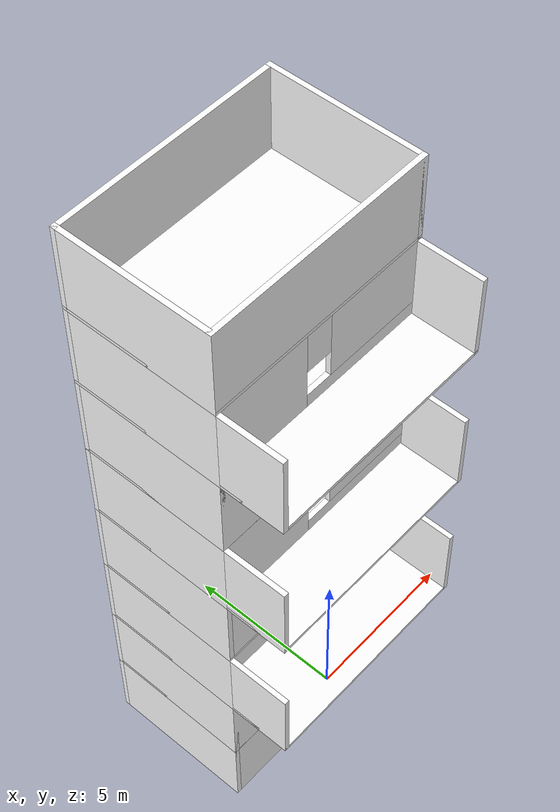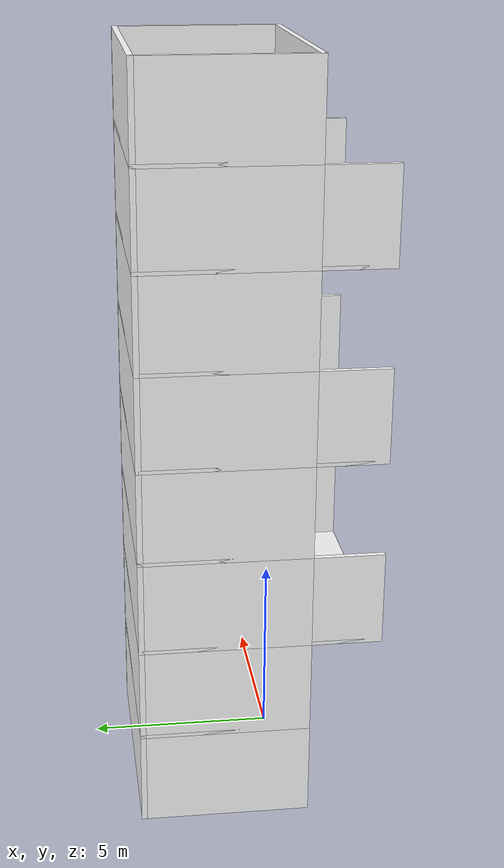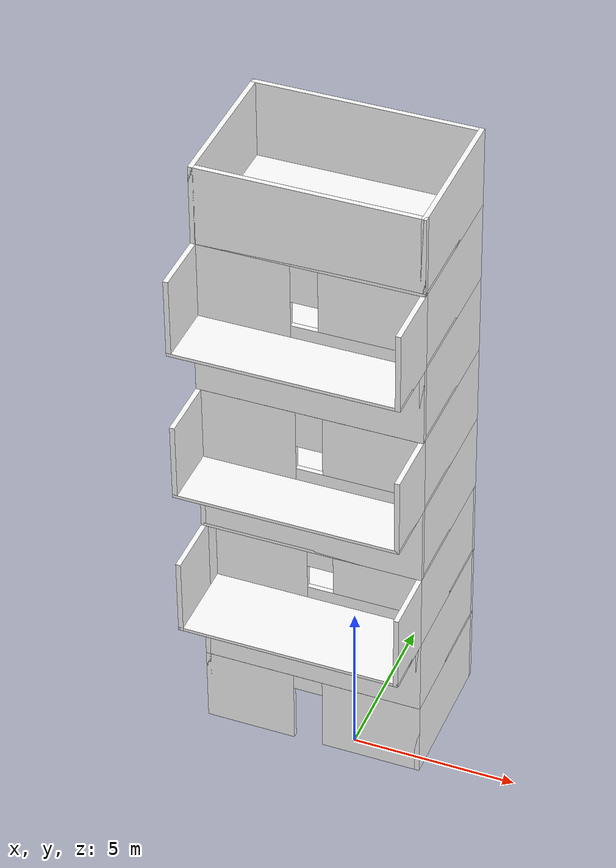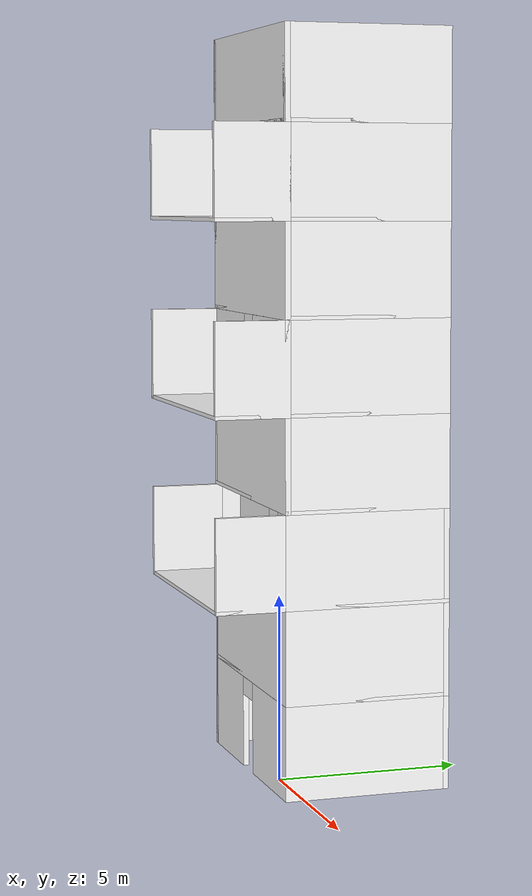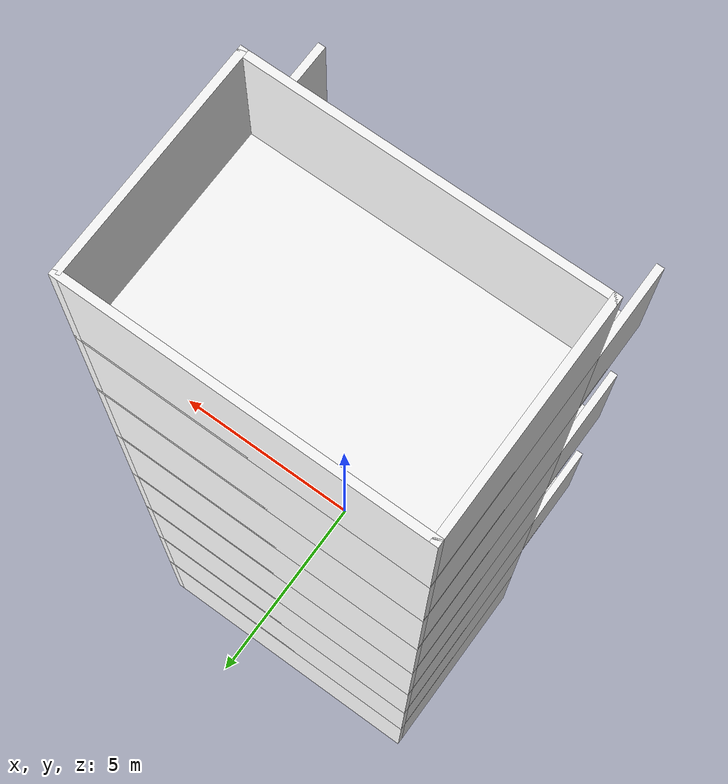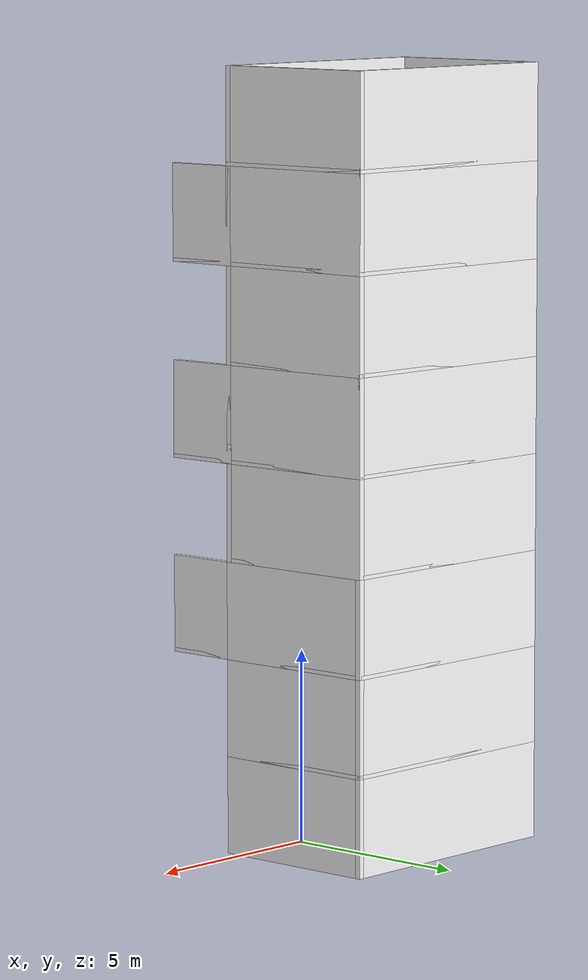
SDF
<?xml version='1.0'?>
<sdf version='1.6'>
  <model name='build_1'>
    <pose frame=''>-1.15099 1.7393 0 0 -0 0</pose>
    <link name='Floor_10'>
      <collision name='Floor_10_Collision'>
        <geometry>
          <box>
            <size>6.75 4.5 0.1</size>
          </box>
        </geometry>
        <pose frame=''>0 0 0.05 0 -0 0</pose>
      </collision>
      <visual name='Floor_10_Visual'>
        <pose frame=''>0 0 0.05 0 -0 0</pose>
        <geometry>
          <box>
            <size>6.75 4.5 0.1</size>
          </box>
        </geometry>
        <material>
          <script>
           <uri>model://build_1/materials/scripts</uri>
            <uri>model://build_1/materials/textures</uri>
            <name>wallCrack4/Diffuse</name>
          </script>
          <ambient>1 1 1 1</ambient>
        </material>
      </visual>
      <pose frame=''>0 0 2.5 0 -0 0</pose>
    </link>
    <link name='Floor_11'>
      <collision name='Floor_11_Collision'>
        <geometry>
          <box>
            <size>6.75 6.35 0.1</size>
          </box>
        </geometry>
        <pose frame=''>0 0 0.05 0 -0 0</pose>
      </collision>
      <visual name='Floor_11_Visual'>
        <pose frame=''>0 0 0.05 0 -0 0</pose>
        <geometry>
          <box>
            <size>6.75 6.35 0.1</size>
          </box>
        </geometry>
        <material>
          <script>
            <uri>model://build_1/materials/scripts</uri>
            <uri>model://build_1/materials/textures</uri>
            <name>wallCrack4/Diffuse</name>
          </script>
          <ambient>1 1 1 1</ambient>
        </material>
      </visual>
      <pose frame=''>0 -0.925 5 0 -0 0</pose>
    </link>
    <link name='Floor_12'>
      <collision name='Floor_12_Collision'>
        <geometry>
          <box>
            <size>6.75 4.5 0.1</size>
          </box>
        </geometry>
        <pose frame=''>0 0 0.05 0 -0 0</pose>
      </collision>
      <visual name='Floor_12_Visual'>
        <pose frame=''>0 0 0.05 0 -0 0</pose>
        <geometry>
          <box>
            <size>6.75 4.5 0.1</size>
          </box>
        </geometry>
        <material>
          <script>
            <uri>model://build_1/materials/scripts</uri>
            <uri>model://build_1/materials/textures</uri>
            <name>wallCrack4/Diffuse</name>
          </script>
          <ambient>1 1 1 1</ambient>
        </material>
      </visual>
      <pose frame=''>0 0 7.5 0 -0 0</pose>
    </link>
    <link name='Floor_13'>
      <collision name='Floor_13_Collision'>
        <geometry>
          <box>
            <size>6.75 6.35 0.1</size>
          </box>
        </geometry>
        <pose frame=''>0 0 0.05 0 -0 0</pose>
      </collision>
      <visual name='Floor_13_Visual'>
        <pose frame=''>0 0 0.05 0 -0 0</pose>
        <geometry>
          <box>
            <size>6.75 6.35 0.1</size>
          </box>
        </geometry>
        <material>
          <script>
             <uri>model://build_1/materials/scripts</uri>
            <uri>model://build_1/materials/textures</uri>
            <name>wallCrack4/Diffuse</name>
          </script>
          <ambient>1 1 1 1</ambient>
        </material>
      </visual>
      <pose frame=''>0 -0.925 10 0 -0 0</pose>
    </link>
    <link name='Floor_14'>
      <collision name='Floor_14_Collision'>
        <geometry>
          <box>
            <size>6.75 4.5 0.1</size>
          </box>
        </geometry>
        <pose frame=''>0 0 0.05 0 -0 0</pose>
      </collision>
      <visual name='Floor_14_Visual'>
        <pose frame=''>0 0 0.05 0 -0 0</pose>
        <geometry>
          <box>
            <size>6.75 4.5 0.1</size>
          </box>
        </geometry>
        <material>
          <script>
            <uri>model://build_1/materials/scripts</uri>
            <uri>model://build_1/materials/textures</uri>
            <name>wallCrack4/Diffuse</name>
          </script>
          <ambient>1 1 1 1</ambient>
        </material>
      </visual>
      <pose frame=''>0 0 12.5 0 -0 0</pose>
    </link>
    <link name='Floor_15'>
      <collision name='Floor_15_Collision'>
        <geometry>
          <box>
            <size>6.75 6.35 0.1</size>
          </box>
        </geometry>
        <pose frame=''>0 0 0.05 0 -0 0</pose>
      </collision>
      <visual name='Floor_15_Visual'>
        <pose frame=''>0 0 0.05 0 -0 0</pose>
        <geometry>
          <box>
            <size>6.75 6.35 0.1</size>
          </box>
        </geometry>
        <material>
          <script>
            <uri>model://build_1/materials/scripts</uri>
            <uri>model://build_1/materials/textures</uri>
            <name>wallCrack4/Diffuse</name>
          </script>
          <ambient>1 1 1 1</ambient>
        </material>
      </visual>
      <pose frame=''>0 -0.925 15 0 -0 0</pose>
    </link>
    <link name='Floor_16'>
      <collision name='Floor_16_Collision'>
        <geometry>
          <box>
            <size>6.75 4.5 0.1</size>
          </box>
        </geometry>
        <pose frame=''>0 0 0.05 0 -0 0</pose>
      </collision>
      <visual name='Floor_16_Visual'>
        <pose frame=''>0 0 0.05 0 -0 0</pose>
        <geometry>
          <box>
            <size>6.75 4.5 0.1</size>
          </box>
        </geometry>
        <material>
          <script>
            <uri>model://build_1/materials/scripts</uri>
            <uri>model://build_1/materials/textures</uri>
            <name>wallCrack4/Diffuse</name>
          </script>
          <ambient>1 1 1 1</ambient>
        </material>
      </visual>
      <pose frame=''>0 0 17.5 0 -0 0</pose>
    </link>
    <link name='Wall_169'>
      <pose frame=''>0 -2.175 0 0 -0 0</pose>
      <visual name='Wall_169_Visual_0'>
        <pose frame=''>-1.98282 0 1.25 0 -0 0</pose>
        <geometry>
          <box>
            <size>2.78436 0.15 2.5</size>
          </box>
        </geometry>
        <material>
          <script>
            <uri>model://build_1/materials/scripts</uri>
            <uri>model://build_1/materials/textures</uri>
            <name>wallCrack7/Diffuse</name>
          </script>
          <ambient>1 1 1 1</ambient>
        </material>
      </visual>
      <collision name='Wall_169_Collision_0'>
        <geometry>
          <box>
            <size>2.78436 0.15 2.5</size>
          </box>
        </geometry>
        <pose frame=''>-1.98282 0 1.25 0 -0 0</pose>
      </collision>
      <visual name='Wall_169_Visual_1'>
        <pose frame=''>1.84218 0 1.25 0 -0 0</pose>
        <geometry>
          <box>
            <size>3.06564 0.15 2.5</size>
          </box>
        </geometry>
        <material>
          <script>
            <uri>model://build_1/materials/scripts</uri>
            <uri>model://build_1/materials/textures</uri>
            <name>wallCrack4/Diffuse</name>
          </script>
          <ambient>1 1 1 1</ambient>
        </material>
      </visual>
      <collision name='Wall_169_Collision_1'>
        <geometry>
          <box>
            <size>3.06564 0.15 2.5</size>
          </box>
        </geometry>
        <pose frame=''>1.84218 0 1.25 0 -0 0</pose>
      </collision>
      <visual name='Wall_169_Visual_2'>
        <pose frame=''>-0.140641 0 2.25 0 -0 0</pose>
        <geometry>
          <box>
            <size>0.9 0.15 0.5</size>
          </box>
        </geometry>
        <material>
          <script>
             <uri>model://build_1/materials/scripts</uri>
            <uri>model://build_1/materials/textures</uri>
            <name>wallCrack4/Diffuse</name>
          </script>
          <ambient>1 1 1 1</ambient>
        </material>
      </visual>
      <collision name='Wall_169_Collision_2'>
        <geometry>
          <box>
            <size>0.9 0.15 0.5</size>
          </box>
        </geometry>
        <pose frame=''>-0.140641 0 2.25 0 -0 0</pose>
      </collision>
    </link>
    <link name='Wall_170'>
      <collision name='Wall_170_Collision'>
        <geometry>
          <box>
            <size>4.5 0.15 2.5</size>
          </box>
        </geometry>
        <pose frame=''>0 0 1.25 0 -0 0</pose>
      </collision>
      <visual name='Wall_170_Visual'>
        <pose frame=''>0 0 1.25 0 -0 0</pose>
        <geometry>
          <box>
            <size>4.5 0.15 2.5</size>
          </box>
        </geometry>
        <material>
          <script>
           <uri>model://build_1/materials/scripts</uri>
            <uri>model://build_1/materials/textures</uri>
            <name>wallCrack8/Diffuse</name>
          </script>
          <ambient>1 1 1 1</ambient>
        </material>
      </visual>
      <pose frame=''>3.3 0 0 0 -0 1.5708</pose>
    </link>
    <link name='Wall_171'>
      <collision name='Wall_171_Collision'>
        <geometry>
          <box>
            <size>6.75 0.15 2.5</size>
          </box>
        </geometry>
        <pose frame=''>0 0 1.25 0 -0 0</pose>
      </collision>
      <visual name='Wall_171_Visual'>
        <pose frame=''>0 0 1.25 0 -0 0</pose>
        <geometry>
          <box>
            <size>6.75 0.15 2.5</size>
          </box>
        </geometry>
        <material>
          <script>
            <uri>model://build_1/materials/scripts</uri>
            <uri>model://build_1/materials/textures</uri>
            <name>wallCrack8/Diffuse</name>
          </script>
          <ambient>1 1 1 1</ambient>
        </material>
      </visual>
      <pose frame=''>0 2.175 0 0 -0 3.14159</pose>
    </link>
    <link name='Wall_173'>
      <collision name='Wall_173_Collision'>
        <geometry>
          <box>
            <size>4.5 0.15 2.5</size>
          </box>
        </geometry>
        <pose frame=''>0 0 1.25 0 -0 0</pose>
      </collision>
      <visual name='Wall_173_Visual'>
        <pose frame=''>0 0 1.25 0 -0 0</pose>
        <geometry>
          <box>
            <size>4.5 0.15 2.5</size>
          </box>
        </geometry>
        <material>
          <script>
            <uri>model://build_1/materials/scripts</uri>
            <uri>model://build_1/materials/textures</uri>
            <name>wallCrack8/Diffuse</name>
          </script>
          <ambient>1 1 1 1</ambient>
        </material>
      </visual>
      <pose frame=''>-3.3 0 0 0 0 -1.5708</pose>
    </link>
    <link name='Wall_175'>
      <collision name='Wall_175_Collision'>
        <geometry>
          <box>
            <size>6.75 0.15 2.5</size>
          </box>
        </geometry>
        <pose frame=''>0 0 1.25 0 -0 0</pose>
      </collision>
      <visual name='Wall_175_Visual'>
        <pose frame=''>0 0 1.25 0 -0 0</pose>
        <geometry>
          <box>
            <size>6.75 0.15 2.5</size>
          </box>
        </geometry>
        <material>
          <script>
             <uri>model://build_1/materials/scripts</uri>
            <uri>model://build_1/materials/textures</uri>
            <name>wallCrack4/Diffuse</name>
          </script>
          <ambient>1 1 1 1</ambient>
        </material>
      </visual>
      <pose frame=''>0 -2.175 2.5 0 -0 0</pose>
    </link>
    <link name='Wall_176'>
      <collision name='Wall_176_Collision'>
        <geometry>
          <box>
            <size>4.5 0.15 2.5</size>
          </box>
        </geometry>
        <pose frame=''>0 0 1.25 0 -0 0</pose>
      </collision>
      <visual name='Wall_176_Visual'>
        <pose frame=''>0 0 1.25 0 -0 0</pose>
        <geometry>
          <box>
            <size>4.5 0.15 2.5</size>
          </box>
        </geometry>
        <material>
          <script>
             <uri>model://build_1/materials/scripts</uri>
            <uri>model://build_1/materials/textures</uri>
            <name>wallCrack7/Diffuse</name>
          </script>
          <ambient>1 1 1 1</ambient>
        </material>
      </visual>
      <pose frame=''>3.3 0 2.5 0 -0 1.5708</pose>
    </link>
    <link name='Wall_177'>
      <collision name='Wall_177_Collision'>
        <geometry>
          <box>
            <size>6.75 0.15 2.5</size>
          </box>
        </geometry>
        <pose frame=''>0 0 1.25 0 -0 0</pose>
      </collision>
      <visual name='Wall_177_Visual'>
        <pose frame=''>0 0 1.25 0 -0 0</pose>
        <geometry>
          <box>
            <size>6.75 0.15 2.5</size>
          </box>
        </geometry>
        <material>
          <script>
            <uri>model://build_1/materials/scripts</uri>
            <uri>model://build_1/materials/textures</uri>
            <name>wallCrack4/Diffuse</name>
          </script>
          <ambient>1 1 1 1</ambient>
        </material>
      </visual>
      <pose frame=''>0 2.175 2.5 0 -0 3.14159</pose>
    </link>
    <link name='Wall_178'>
      <collision name='Wall_178_Collision'>
        <geometry>
          <box>
            <size>4.5 0.15 2.5</size>
          </box>
        </geometry>
        <pose frame=''>0 0 1.25 0 -0 0</pose>
      </collision>
      <visual name='Wall_178_Visual'>
        <pose frame=''>0 0 1.25 0 -0 0</pose>
        <geometry>
          <box>
            <size>4.5 0.15 2.5</size>
          </box>
        </geometry>
        <material>
          <script>
            <uri>model://build_1/materials/scripts</uri>
            <uri>model://build_1/materials/textures</uri>
            <name>wallCrack3/Diffuse</name>
          </script>
          <ambient>1 1 1 1</ambient>
        </material>
      </visual>
      <pose frame=''>-3.3 0 2.5 0 0 -1.5708</pose>
    </link>
    <link name='Wall_180'>
      <collision name='Wall_180_Collision'>
        <geometry>
          <box>
            <size>4.5 0.15 2.5</size>
          </box>
        </geometry>
        <pose frame=''>0 0 1.25 0 -0 0</pose>
      </collision>
      <visual name='Wall_180_Visual'>
        <pose frame=''>0 0 1.25 0 -0 0</pose>
        <geometry>
          <box>
            <size>4.5 0.15 2.5</size>
          </box>
        </geometry>
        <material>
          <script>
            <uri>model://build_1/materials/scripts</uri>
            <uri>model://build_1/materials/textures</uri>
            <name>wallCrack4/Diffuse</name>
          </script>
          <ambient>1 1 1 1</ambient>
        </material>
      </visual>
      <pose frame=''>3.3 0 5 0 -0 1.5708</pose>
    </link>
    <link name='Wall_181'>
      <collision name='Wall_181_Collision'>
        <geometry>
          <box>
            <size>6.75 0.15 2.5</size>
          </box>
        </geometry>
        <pose frame=''>0 0 1.25 0 -0 0</pose>
      </collision>
      <visual name='Wall_181_Visual'>
        <pose frame=''>0 0 1.25 0 -0 0</pose>
        <geometry>
          <box>
            <size>6.75 0.15 2.5</size>
          </box>
        </geometry>
        <material>
          <script>
            <uri>model://build_1/materials/scripts</uri>
            <uri>model://build_1/materials/textures</uri>
            <name>wallCrack7/Diffuse</name>
          </script>
          <ambient>1 1 1 1</ambient>
        </material>
      </visual>
      <pose frame=''>0 2.175 5 0 -0 3.14159</pose>
    </link>
    <link name='Wall_182'>
      <collision name='Wall_182_Collision'>
        <geometry>
          <box>
            <size>4.5 0.15 2.5</size>
          </box>
        </geometry>
        <pose frame=''>0 0 1.25 0 -0 0</pose>
      </collision>
      <visual name='Wall_182_Visual'>
        <pose frame=''>0 0 1.25 0 -0 0</pose>
        <geometry>
          <box>
            <size>4.5 0.15 2.5</size>
          </box>
        </geometry>
        <material>
          <script>
            <uri>model://build_1/materials/scripts</uri>
            <uri>model://build_1/materials/textures</uri>
            <name>wallCrack4/Diffuse</name>
          </script>
          <ambient>1 1 1 1</ambient>
        </material>
      </visual>
      <pose frame=''>-3.3 0 5 0 0 -1.5708</pose>
    </link>
    <link name='Wall_183'>
      <collision name='Wall_183_Collision'>
        <geometry>
          <box>
            <size>2 0.15 2.5</size>
          </box>
        </geometry>
        <pose frame=''>0 0 1.25 0 -0 0</pose>
      </collision>
      <visual name='Wall_183_Visual'>
        <pose frame=''>0 0 1.25 0 -0 0</pose>
        <geometry>
          <box>
            <size>2 0.15 2.5</size>
          </box>
        </geometry>
        <material>
          <script>
            <uri>model://build_1/materials/scripts</uri>
            <uri>model://build_1/materials/textures</uri>
            <name>wallCrack4/Diffuse</name>
          </script>
          <ambient>1 1 1 1</ambient>
        </material>
      </visual>
      <pose frame=''>-3.3 -3.1 5 0 0 -1.5708</pose>
    </link>
    <link name='Wall_185'>
      <collision name='Wall_185_Collision'>
        <geometry>
          <box>
            <size>2 0.15 2.5</size>
          </box>
        </geometry>
        <pose frame=''>0 0 1.25 0 -0 0</pose>
      </collision>
      <visual name='Wall_185_Visual'>
        <pose frame=''>0 0 1.25 0 -0 0</pose>
        <geometry>
          <box>
            <size>2 0.15 2.5</size>
          </box>
        </geometry>
        <material>
          <script>
            <uri>model://build_1/materials/scripts</uri>
            <uri>model://build_1/materials/textures</uri>
            <name>wallCrack4/Diffuse</name>
          </script>
          <ambient>1 1 1 1</ambient>
        </material>
      </visual>
      <pose frame=''>3.3 -3.1 5 0 0 -1.5708</pose>
    </link>
    <link name='Wall_195'>
      <pose frame=''>0.023026 -1.48981 5 0 -0 0</pose>
      <visual name='Wall_195_Visual_0'>
        <pose frame=''>-1.83079 0 1.25 0 -0 0</pose>
        <geometry>
          <box>
            <size>2.83842 0.15 2.5</size>
          </box>
        </geometry>
        <material>
          <script>
            <uri>model://build_1/materials/scripts</uri>
            <uri>model://build_1/materials/textures</uri>
            <name>wallCrack4/Diffuse</name>
          </script>
          <ambient>1 1 1 1</ambient>
        </material>
      </visual>
      <collision name='Wall_195_Collision_0'>
        <geometry>
          <box>
            <size>2.83842 0.15 2.5</size>
          </box>
        </geometry>
        <pose frame=''>-1.83079 0 1.25 0 -0 0</pose>
      </collision>
      <visual name='Wall_195_Visual_1'>
        <pose frame=''>1.41921 0 0.25 0 -0 0</pose>
        <geometry>
          <box>
            <size>3.66158 0.15 0.5</size>
          </box>
        </geometry>
        <material>
          <script>
            <uri>model://build_1/materials/scripts</uri>
            <uri>model://build_1/materials/textures</uri>
            <name>wallCrack4/Diffuse</name>
          </script>
          <ambient>1 1 1 1</ambient>
        </material>
      </visual>
      <collision name='Wall_195_Collision_1'>
        <geometry>
          <box>
            <size>3.66158 0.15 0.5</size>
          </box>
        </geometry>
        <pose frame=''>1.41921 0 0.25 0 -0 0</pose>
      </collision>
      <visual name='Wall_195_Visual_2'>
        <pose frame=''>1.81921 0 1.5 0 -0 0</pose>
        <geometry>
          <box>
            <size>2.86158 0.15 2</size>
          </box>
        </geometry>
        <material>
          <script>
            <uri>model://build_1/materials/scripts</uri>
            <uri>model://build_1/materials/textures</uri>
            <name>wallCrack4/Diffuse</name>
          </script>
          <ambient>1 1 1 1</ambient>
        </material>
      </visual>
      <collision name='Wall_195_Collision_2'>
        <geometry>
          <box>
            <size>2.86158 0.15 2</size>
          </box>
        </geometry>
        <pose frame=''>1.81921 0 1.5 0 -0 0</pose>
      </collision>
      <visual name='Wall_195_Visual_3'>
        <pose frame=''>-0.01158 0 1.9 0 -0 0</pose>
        <geometry>
          <box>
            <size>0.8 0.15 1.2</size>
          </box>
        </geometry>
        <material>
          <script>
            <uri>model://build_1/materials/scripts</uri>
            <uri>model://build_1/materials/textures</uri>
            <name>wallCrack4/Diffuse</name>
          </script>
          <ambient>1 1 1 1</ambient>
        </material>
      </visual>
      <collision name='Wall_195_Collision_3'>
        <geometry>
          <box>
            <size>0.8 0.15 1.2</size>
          </box>
        </geometry>
        <pose frame=''>-0.01158 0 1.9 0 -0 0</pose>
      </collision>
    </link>
    <link name='Wall_198'>
      <collision name='Wall_198_Collision'>
        <geometry>
          <box>
            <size>6.75 0.15 2.5</size>
          </box>
        </geometry>
        <pose frame=''>0 0 1.25 0 -0 0</pose>
      </collision>
      <visual name='Wall_198_Visual'>
        <pose frame=''>0 0 1.25 0 -0 0</pose>
        <geometry>
          <box>
            <size>6.75 0.15 2.5</size>
          </box>
        </geometry>
        <material>
          <script>
            <uri>model://build_1/materials/scripts</uri>
            <uri>model://build_1/materials/textures</uri>
            <name>wallCrack4/Diffuse</name>
          </script>
          <ambient>1 1 1 1</ambient>
        </material>
      </visual>
      <pose frame=''>0 2.175 7.5 0 -0 3.14159</pose>
    </link>
    <link name='Wall_199'>
      <collision name='Wall_199_Collision'>
        <geometry>
          <box>
            <size>4.5 0.15 2.5</size>
          </box>
        </geometry>
        <pose frame=''>0 0 1.25 0 -0 0</pose>
      </collision>
      <visual name='Wall_199_Visual'>
        <pose frame=''>0 0 1.25 0 -0 0</pose>
        <geometry>
          <box>
            <size>4.5 0.15 2.5</size>
          </box>
        </geometry>
        <material>
          <script>
            <uri>model://build_1/materials/scripts</uri>
            <uri>model://build_1/materials/textures</uri>
            <name>wallCrack4/Diffuse</name>
          </script>
          <ambient>1 1 1 1</ambient>
        </material>
      </visual>
      <pose frame=''>-3.3 0 7.5 0 0 -1.5708</pose>
    </link>
    <link name='Wall_203'>
      <collision name='Wall_203_Collision'>
        <geometry>
          <box>
            <size>4.5 0.15 2.5</size>
          </box>
        </geometry>
        <pose frame=''>0 0 1.25 0 -0 0</pose>
      </collision>
      <visual name='Wall_203_Visual'>
        <pose frame=''>0 0 1.25 0 -0 0</pose>
        <geometry>
          <box>
            <size>4.5 0.15 2.5</size>
          </box>
        </geometry>
        <material>
          <script>
            <uri>model://build_1/materials/scripts</uri>
            <uri>model://build_1/materials/textures</uri>
            <name>wallCrack8/Diffuse</name>
          </script>
          <ambient>1 1 1 1</ambient>
        </material>
      </visual>
      <pose frame=''>3.3 0 7.5 0 0 -1.5708</pose>
    </link>
    <link name='Wall_204'>
      <collision name='Wall_204_Collision'>
        <geometry>
          <box>
            <size>6.75 0.15 2.5</size>
          </box>
        </geometry>
        <pose frame=''>0 0 1.25 0 -0 0</pose>
      </collision>
      <visual name='Wall_204_Visual'>
        <pose frame=''>0 0 1.25 0 -0 0</pose>
        <geometry>
          <box>
            <size>6.75 0.15 2.5</size>
          </box>
        </geometry>
        <material>
          <script>
            <uri>model://build_1/materials/scripts</uri>
            <uri>model://build_1/materials/textures</uri>
            <name>wallCrack4/Diffuse</name>
          </script>
          <ambient>1 1 1 1</ambient>
        </material>
      </visual>
      <pose frame=''>0 -2.175 7.5 0 -0 3.14159</pose>
    </link>
    <link name='Wall_206'>
      <collision name='Wall_206_Collision'>
        <geometry>
          <box>
            <size>6.75 0.15 2.5</size>
          </box>
        </geometry>
        <pose frame=''>0 0 1.25 0 -0 0</pose>
      </collision>
      <visual name='Wall_206_Visual'>
        <pose frame=''>0 0 1.25 0 -0 0</pose>
        <geometry>
          <box>
            <size>6.75 0.15 2.5</size>
          </box>
        </geometry>
        <material>
          <script>
            <uri>model://build_1/materials/scripts</uri>
            <uri>model://build_1/materials/textures</uri>
            <name>wallCrack4/Diffuse</name>
          </script>
          <ambient>1 1 1 1</ambient>
        </material>
      </visual>
      <pose frame=''>0 2.175 10 0 -0 3.14159</pose>
    </link>
    <link name='Wall_207'>
      <collision name='Wall_207_Collision'>
        <geometry>
          <box>
            <size>4.5 0.15 2.5</size>
          </box>
        </geometry>
        <pose frame=''>0 0 1.25 0 -0 0</pose>
      </collision>
      <visual name='Wall_207_Visual'>
        <pose frame=''>0 0 1.25 0 -0 0</pose>
        <geometry>
          <box>
            <size>4.5 0.15 2.5</size>
          </box>
        </geometry>
        <material>
          <script>
            <uri>model://build_1/materials/scripts</uri>
            <uri>model://build_1/materials/textures</uri>
            <name>wallCrack4/Diffuse</name>
          </script>
          <ambient>1 1 1 1</ambient>
        </material>
      </visual>
      <pose frame=''>-3.3 0 10 0 0 -1.5708</pose>
    </link>
    <link name='Wall_208'>
      <collision name='Wall_208_Collision'>
        <geometry>
          <box>
            <size>4.5 0.15 2.5</size>
          </box>
        </geometry>
        <pose frame=''>0 0 1.25 0 -0 0</pose>
      </collision>
      <visual name='Wall_208_Visual'>
        <pose frame=''>0 0 1.25 0 -0 0</pose>
        <geometry>
          <box>
            <size>4.5 0.15 2.5</size>
          </box>
        </geometry>
        <material>
          <script>
            <uri>model://build_1/materials/scripts</uri>
            <uri>model://build_1/materials/textures</uri>
            <name>wallCrack4/Diffuse</name>
          </script>
          <ambient>1 1 1 1</ambient>
        </material>
      </visual>
      <pose frame=''>3.3 0 10 0 0 -1.5708</pose>
    </link>
    <link name='Wall_210'>
      <collision name='Wall_210_Collision'>
        <geometry>
          <box>
            <size>2 0.15 2.5</size>
          </box>
        </geometry>
        <pose frame=''>0 0 1.25 0 -0 0</pose>
      </collision>
      <visual name='Wall_210_Visual'>
        <pose frame=''>0 0 1.25 0 -0 0</pose>
        <geometry>
          <box>
            <size>2 0.15 2.5</size>
          </box>
        </geometry>
        <material>
          <script>
             <uri>model://build_1/materials/scripts</uri>
            <uri>model://build_1/materials/textures</uri>
            <name>wallCrack4/Diffuse</name>
          </script>
          <ambient>1 1 1 1</ambient>
        </material>
      </visual>
      <pose frame=''>-3.3 -3.1 10 0 0 -1.5708</pose>
    </link>
    <link name='Wall_212'>
      <collision name='Wall_212_Collision'>
        <geometry>
          <box>
            <size>2 0.15 2.5</size>
          </box>
        </geometry>
        <pose frame=''>0 0 1.25 0 -0 0</pose>
      </collision>
      <visual name='Wall_212_Visual'>
        <pose frame=''>0 0 1.25 0 -0 0</pose>
        <geometry>
          <box>
            <size>2 0.15 2.5</size>
          </box>
        </geometry>
        <material>
          <script>
            <uri>model://build_1/materials/scripts</uri>
            <uri>model://build_1/materials/textures</uri>
            <name>wallCrack4/Diffuse</name>
          </script>
          <ambient>1 1 1 1</ambient>
        </material>
      </visual>
      <pose frame=''>3.3 -3.1 10 0 0 -1.5708</pose>
    </link>
    <link name='Wall_214'>
      <pose frame=''>0 -2.175 10 0 -0 0</pose>
      <visual name='Wall_214_Visual_0'>
        <pose frame=''>-1.88938 0 1.25 0 -0 0</pose>
        <geometry>
          <box>
            <size>2.97124 0.15 2.5</size>
          </box>
        </geometry>
        <material>
          <script>
            <uri>model://build_1/materials/scripts</uri>
            <uri>model://build_1/materials/textures</uri>
            <name>wallCrack4/Diffuse</name>
          </script>
          <ambient>1 1 1 1</ambient>
        </material>
      </visual>
      <collision name='Wall_214_Collision_0'>
        <geometry>
          <box>
            <size>2.97124 0.15 2.5</size>
          </box>
        </geometry>
        <pose frame=''>-1.88938 0 1.25 0 -0 0</pose>
      </collision>
      <visual name='Wall_214_Visual_1'>
        <pose frame=''>1.48562 0 0.25 0 -0 0</pose>
        <geometry>
          <box>
            <size>3.77876 0.15 0.5</size>
          </box>
        </geometry>
        <material>
          <script>
            <uri>model://build_1/materials/scripts</uri>
            <uri>model://build_1/materials/textures</uri>
            <name>wallCrack4/Diffuse</name>
          </script>
          <ambient>1 1 1 1</ambient>
        </material>
      </visual>
      <collision name='Wall_214_Collision_1'>
        <geometry>
          <box>
            <size>3.77876 0.15 0.5</size>
          </box>
        </geometry>
        <pose frame=''>1.48562 0 0.25 0 -0 0</pose>
      </collision>
      <visual name='Wall_214_Visual_2'>
        <pose frame=''>1.88562 0 1.5 0 -0 0</pose>
        <geometry>
          <box>
            <size>2.97876 0.15 2</size>
          </box>
        </geometry>
        <material>
          <script>
            <uri>model://build_1/materials/scripts</uri>
            <uri>model://build_1/materials/textures</uri>
            <name>wallCrack4/Diffuse</name>
          </script>
          <ambient>1 1 1 1</ambient>
        </material>
      </visual>
      <collision name='Wall_214_Collision_2'>
        <geometry>
          <box>
            <size>2.97876 0.15 2</size>
          </box>
        </geometry>
        <pose frame=''>1.88562 0 1.5 0 -0 0</pose>
      </collision>
      <visual name='Wall_214_Visual_3'>
        <pose frame=''>-0.003763 0 1.9 0 -0 0</pose>
        <geometry>
          <box>
            <size>0.8 0.15 1.2</size>
          </box>
        </geometry>
        <material>
          <script>
            <uri>model://build_1/materials/scripts</uri>
            <uri>model://build_1/materials/textures</uri>
            <name>wallCrack4/Diffuse</name>
          </script>
          <ambient>1 1 1 1</ambient>
        </material>
      </visual>
      <collision name='Wall_214_Collision_3'>
        <geometry>
          <box>
            <size>0.8 0.15 1.2</size>
          </box>
        </geometry>
        <pose frame=''>-0.003763 0 1.9 0 -0 0</pose>
      </collision>
    </link>
    <link name='Wall_216'>
      <collision name='Wall_216_Collision'>
        <geometry>
          <box>
            <size>6.75 0.15 2.5</size>
          </box>
        </geometry>
        <pose frame=''>0 0 1.25 0 -0 0</pose>
      </collision>
      <visual name='Wall_216_Visual'>
        <pose frame=''>0 0 1.25 0 -0 0</pose>
        <geometry>
          <box>
            <size>6.75 0.15 2.5</size>
          </box>
        </geometry>
        <material>
          <script>
            <uri>model://build_1/materials/scripts</uri>
            <uri>model://build_1/materials/textures</uri>
            <name>wallCrack4/Diffuse</name>
          </script>
          <ambient>1 1 1 1</ambient>
        </material>
      </visual>
      <pose frame=''>0 2.175 12.5 0 -0 3.14159</pose>
    </link>
    <link name='Wall_217'>
      <collision name='Wall_217_Collision'>
        <geometry>
          <box>
            <size>4.5 0.15 2.5</size>
          </box>
        </geometry>
        <pose frame=''>0 0 1.25 0 -0 0</pose>
      </collision>
      <visual name='Wall_217_Visual'>
        <pose frame=''>0 0 1.25 0 -0 0</pose>
        <geometry>
          <box>
            <size>4.5 0.15 2.5</size>
          </box>
        </geometry>
        <material>
          <script>
            <uri>model://build_1/materials/scripts</uri>
            <uri>model://build_1/materials/textures</uri>
            <name>wallCrack4/Diffuse</name>
          </script>
          <ambient>1 1 1 1</ambient>
        </material>
      </visual>
      <pose frame=''>-3.3 0 12.5 0 0 -1.5708</pose>
    </link>
    <link name='Wall_218'>
      <collision name='Wall_218_Collision'>
        <geometry>
          <box>
            <size>4.5 0.15 2.5</size>
          </box>
        </geometry>
        <pose frame=''>0 0 1.25 0 -0 0</pose>
      </collision>
      <visual name='Wall_218_Visual'>
        <pose frame=''>0 0 1.25 0 -0 0</pose>
        <geometry>
          <box>
            <size>4.5 0.15 2.5</size>
          </box>
        </geometry>
        <material>
          <script>
           <uri>model://build_1/materials/scripts</uri>
            <uri>model://build_1/materials/textures</uri>
            <name>wallCrack4/Diffuse</name>
          </script>
          <ambient>1 1 1 1</ambient>
        </material>
      </visual>
      <pose frame=''>3.3 0 12.5 0 0 -1.5708</pose>
    </link>
    <link name='Wall_222'>
      <collision name='Wall_222_Collision'>
        <geometry>
          <box>
            <size>6.75 0.15 2.5</size>
          </box>
        </geometry>
        <pose frame=''>0 0 1.25 0 -0 0</pose>
      </collision>
      <visual name='Wall_222_Visual'>
        <pose frame=''>0 0 1.25 0 -0 0</pose>
        <geometry>
          <box>
            <size>6.75 0.15 2.5</size>
          </box>
        </geometry>
        <material>
          <script>
            <uri>model://build_1/materials/scripts</uri>
            <uri>model://build_1/materials/textures</uri>
            <name>wallCrack4/Diffuse</name>
          </script>
          <ambient>1 1 1 1</ambient>
        </material>
      </visual>
      <pose frame=''>0 -2.175 12.5 0 -0 0</pose>
    </link>
    <link name='Wall_224'>
      <collision name='Wall_224_Collision'>
        <geometry>
          <box>
            <size>6.75 0.15 2.5</size>
          </box>
        </geometry>
        <pose frame=''>0 0 1.25 0 -0 0</pose>
      </collision>
      <visual name='Wall_224_Visual'>
        <pose frame=''>0 0 1.25 0 -0 0</pose>
        <geometry>
          <box>
            <size>6.75 0.15 2.5</size>
          </box>
        </geometry>
        <material>
          <script>
            <uri>model://build_1/materials/scripts</uri>
            <uri>model://build_1/materials/textures</uri>
            <name>wallCrack4/Diffuse</name>
          </script>
          <ambient>1 1 1 1</ambient>
        </material>
      </visual>
      <pose frame=''>0 2.175 15 0 -0 3.14159</pose>
    </link>
    <link name='Wall_225'>
      <collision name='Wall_225_Collision'>
        <geometry>
          <box>
            <size>4.5 0.15 2.5</size>
          </box>
        </geometry>
        <pose frame=''>0 0 1.25 0 -0 0</pose>
      </collision>
      <visual name='Wall_225_Visual'>
        <pose frame=''>0 0 1.25 0 -0 0</pose>
        <geometry>
          <box>
            <size>4.5 0.15 2.5</size>
          </box>
        </geometry>
        <material>
          <script>
            <uri>model://build_1/materials/scripts</uri>
            <uri>model://build_1/materials/textures</uri>
            <name>wallCrack4/Diffuse</name>
          </script>
          <ambient>1 1 1 1</ambient>
        </material>
      </visual>
      <pose frame=''>-3.3 0 15 0 0 -1.5708</pose>
    </link>
    <link name='Wall_226'>
      <collision name='Wall_226_Collision'>
        <geometry>
          <box>
            <size>4.5 0.15 2.5</size>
          </box>
        </geometry>
        <pose frame=''>0 0 1.25 0 -0 0</pose>
      </collision>
      <visual name='Wall_226_Visual'>
        <pose frame=''>0 0 1.25 0 -0 0</pose>
        <geometry>
          <box>
            <size>4.5 0.15 2.5</size>
          </box>
        </geometry>
        <material>
          <script>
            <uri>model://build_1/materials/scripts</uri>
            <uri>model://build_1/materials/textures</uri>
            <name>wallCrack4/Diffuse</name>
          </script>
          <ambient>1 1 1 1</ambient>
        </material>
      </visual>
      <pose frame=''>3.3 0 15 0 0 -1.5708</pose>
    </link>
    <link name='Wall_228'>
      <collision name='Wall_228_Collision'>
        <geometry>
          <box>
            <size>2 0.15 2.5</size>
          </box>
        </geometry>
        <pose frame=''>0 0 1.25 0 -0 0</pose>
      </collision>
      <visual name='Wall_228_Visual'>
        <pose frame=''>0 0 1.25 0 -0 0</pose>
        <geometry>
          <box>
            <size>2 0.15 2.5</size>
          </box>
        </geometry>
        <material>
          <script>
             <uri>model://build_1/materials/scripts</uri>
            <uri>model://build_1/materials/textures</uri>
            <name>wallCrack4/Diffuse</name>
          </script>
          <ambient>1 1 1 1</ambient>
        </material>
      </visual>
      <pose frame=''>-3.3 -3.1 15 0 0 -1.5708</pose>
    </link>
    <link name='Wall_230'>
      <collision name='Wall_230_Collision'>
        <geometry>
          <box>
            <size>2 0.15 2.5</size>
          </box>
        </geometry>
        <pose frame=''>0 0 1.25 0 -0 0</pose>
      </collision>
      <visual name='Wall_230_Visual'>
        <pose frame=''>0 0 1.25 0 -0 0</pose>
        <geometry>
          <box>
            <size>2 0.15 2.5</size>
          </box>
        </geometry>
        <material>
          <script>
            <uri>model://build_1/materials/scripts</uri>
            <uri>model://build_1/materials/textures</uri>
            <name>wallCrack4/Diffuse</name>
          </script>
          <ambient>1 1 1 1</ambient>
        </material>
      </visual>
      <pose frame=''>3.3 -3.1 15 0 0 -1.5708</pose>
    </link>
    <link name='Wall_232'>
      <pose frame=''>0 -2.175 15 0 -0 0</pose>
      <visual name='Wall_232_Visual_0'>
        <pose frame=''>-1.93501 0 1.25 0 -0 0</pose>
        <geometry>
          <box>
            <size>2.87999 0.15 2.5</size>
          </box>
        </geometry>
        <material>
          <script>
              <uri>model://build_1/materials/scripts</uri>
            <uri>model://build_1/materials/textures</uri>
            <name>wallCrack4/Diffuse</name>
          </script>
          <ambient>1 1 1 1</ambient>
        </material>
      </visual>
      <collision name='Wall_232_Collision_0'>
        <geometry>
          <box>
            <size>2.87999 0.15 2.5</size>
          </box>
        </geometry>
        <pose frame=''>-1.93501 0 1.25 0 -0 0</pose>
      </collision>
      <visual name='Wall_232_Visual_1'>
        <pose frame=''>1.43999 0 0.25 0 -0 0</pose>
        <geometry>
          <box>
            <size>3.87001 0.15 0.5</size>
          </box>
        </geometry>
        <material>
          <script>
            <uri>model://build_1/materials/scripts</uri>
            <uri>model://build_1/materials/textures</uri>
            <name>wallCrack4/Diffuse</name>
          </script>
          <ambient>1 1 1 1</ambient>
        </material>
      </visual>
      <collision name='Wall_232_Collision_1'>
        <geometry>
          <box>
            <size>3.87001 0.15 0.5</size>
          </box>
        </geometry>
        <pose frame=''>1.43999 0 0.25 0 -0 0</pose>
      </collision>
      <visual name='Wall_232_Visual_2'>
        <pose frame=''>1.83999 0 1.5 0 -0 0</pose>
        <geometry>
          <box>
            <size>3.07002 0.15 2</size>
          </box>
        </geometry>
        <material>
          <script>
            <uri>model://build_1/materials/scripts</uri>
            <uri>model://build_1/materials/textures</uri>
            <name>wallCrack4/Diffuse</name>
          </script>
          <ambient>1 1 1 1</ambient>
        </material>
      </visual>
      <collision name='Wall_232_Collision_2'>
        <geometry>
          <box>
            <size>3.07002 0.15 2</size>
          </box>
        </geometry>
        <pose frame=''>1.83999 0 1.5 0 -0 0</pose>
      </collision>
      <visual name='Wall_232_Visual_3'>
        <pose frame=''>-0.095015 0 1.9 0 -0 0</pose>
        <geometry>
          <box>
            <size>0.8 0.15 1.2</size>
          </box>
        </geometry>
        <material>
          <script>
            <uri>model://build_1/materials/scripts</uri>
            <uri>model://build_1/materials/textures</uri>
            <name>wallCrack4/Diffuse</name>
          </script>
          <ambient>1 1 1 1</ambient>
        </material>
      </visual>
      <collision name='Wall_232_Collision_3'>
        <geometry>
          <box>
            <size>0.8 0.15 1.2</size>
          </box>
        </geometry>
        <pose frame=''>-0.095015 0 1.9 0 -0 0</pose>
      </collision>
    </link>
    <link name='Wall_234'>
      <collision name='Wall_234_Collision'>
        <geometry>
          <box>
            <size>6.75 0.15 2.5</size>
          </box>
        </geometry>
        <pose frame=''>0 0 1.25 0 -0 0</pose>
      </collision>
      <visual name='Wall_234_Visual'>
        <pose frame=''>0 0 1.25 0 -0 0</pose>
        <geometry>
          <box>
            <size>6.75 0.15 2.5</size>
          </box>
        </geometry>
        <material>
          <script>
             <uri>model://build_1/materials/scripts</uri>
            <uri>model://build_1/materials/textures</uri>
            <name>wallCrack4/Diffuse</name>
          </script>
          <ambient>1 1 1 1</ambient>
        </material>
      </visual>
      <pose frame=''>0 2.175 17.5 0 -0 3.14159</pose>
    </link>
    <link name='Wall_235'>
      <collision name='Wall_235_Collision'>
        <geometry>
          <box>
            <size>4.5 0.15 2.5</size>
          </box>
        </geometry>
        <pose frame=''>0 0 1.25 0 -0 0</pose>
      </collision>
      <visual name='Wall_235_Visual'>
        <pose frame=''>0 0 1.25 0 -0 0</pose>
        <geometry>
          <box>
            <size>4.5 0.15 2.5</size>
          </box>
        </geometry>
        <material>
          <script>
             <uri>model://build_1/materials/scripts</uri>
            <uri>model://build_1/materials/textures</uri>
            <name>wallCrack4/Diffuse</name>
          </script>
          <ambient>1 1 1 1</ambient>
        </material>
      </visual>
      <pose frame=''>-3.3 0 17.5 0 0 -1.5708</pose>
    </link>
    <link name='Wall_236'>
      <collision name='Wall_236_Collision'>
        <geometry>
          <box>
            <size>4.5 0.15 2.5</size>
          </box>
        </geometry>
        <pose frame=''>0 0 1.25 0 -0 0</pose>
      </collision>
      <visual name='Wall_236_Visual'>
        <pose frame=''>0 0 1.25 0 -0 0</pose>
        <geometry>
          <box>
            <size>4.5 0.15 2.5</size>
          </box>
        </geometry>
        <material>
          <script>
            <uri>model://build_1/materials/scripts</uri>
            <uri>model://build_1/materials/textures</uri>
            <name>wallCrack4/Diffuse</name>
          </script>
          <ambient>1 1 1 1</ambient>
        </material>
      </visual>
      <pose frame=''>3.3 0 17.5 0 0 -1.5708</pose>
    </link>
    <link name='Wall_239'>
      <collision name='Wall_239_Collision'>
        <geometry>
          <box>
            <size>6.75 0.15 2.5</size>
          </box>
        </geometry>
        <pose frame=''>0 0 1.25 0 -0 0</pose>
      </collision>
      <visual name='Wall_239_Visual'>
        <pose frame=''>0 0 1.25 0 -0 0</pose>
        <geometry>
          <box>
            <size>6.75 0.15 2.5</size>
          </box>
        </geometry>
        <material>
          <script>
             <uri>model://build_1/materials/scripts</uri>
            <uri>model://build_1/materials/textures</uri>
            <name>wallCrack4/Diffuse</name>
          </script>
          <ambient>1 1 1 1</ambient>
        </material>
      </visual>
      <pose frame=''>0 -2.175 17.5 0 -0 0</pose>
    </link>
    <static>1</static>
  </model>
</sdf>
